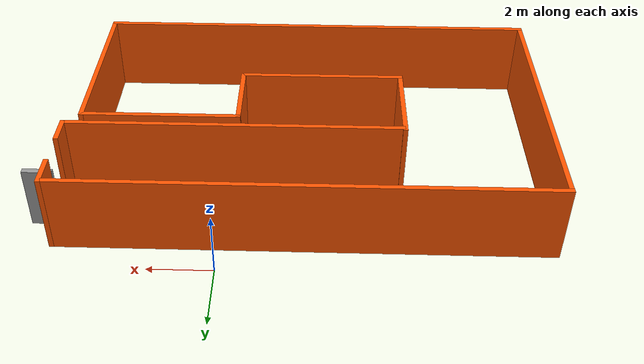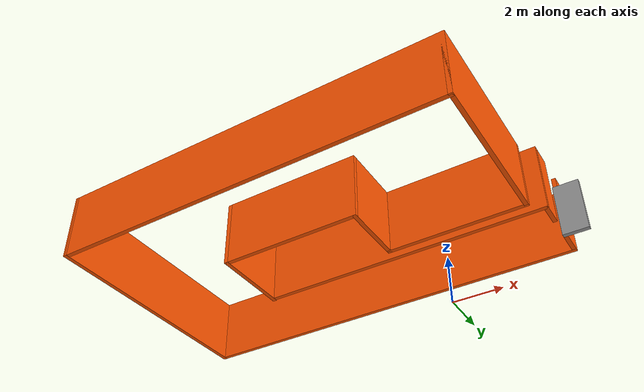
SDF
<?xml version='1.0'?>
<sdf version='1.6'>
  <model name='mybuilding'>
    <pose frame=''>-2.505 -5.355 0 0 -0 0</pose>
    <link name='Door_0'>
      <collision name='Door_0_Collision'>
        <geometry>
          <box>
            <size>0.9 0.17 2</size>
          </box>
        </geometry>
        <pose frame=''>0 0 1 0 -0 0</pose>
      </collision>
      <visual name='Door_0_Visual'>
        <pose frame=''>0 0 1 0 -0 0</pose>
        <geometry>
          <box>
            <size>0.9 0.17 2</size>
          </box>
        </geometry>
        <material>
          <script>
            <uri>file://media/materials/scripts/gazebo.material</uri>
            <name>Gazebo/Grey</name>
          </script>
        </material>
      </visual>
      <pose frame=''>7.805 3.415 0 0 -0 0</pose>
    </link>
    <link name='Wall_1'>
      <collision name='Wall_1_Collision'>
        <geometry>
          <box>
            <size>1 0.15 2.5</size>
          </box>
        </geometry>
        <pose frame=''>0 0 1.25 0 -0 0</pose>
      </collision>
      <visual name='Wall_1_Visual'>
        <pose frame=''>0 0 1.25 0 -0 0</pose>
        <geometry>
          <box>
            <size>1 0.15 2.5</size>
          </box>
        </geometry>
        <material>
          <script>
            <uri>file://media/materials/scripts/gazebo.material</uri>
            <name>Gazebo/Grey</name>
          </script>
          <ambient>1 0.333333 0 1</ambient>
        </material>
        <meta>
          <layer>0</layer>
        </meta>
      </visual>
      <pose frame=''>7.425 4 0 0 0 -1.5708</pose>
    </link>
    <link name='Wall_23'>
      <collision name='Wall_23_Collision'>
        <geometry>
          <box>
            <size>15 0.15 2.5</size>
          </box>
        </geometry>
        <pose frame=''>0 0 1.25 0 -0 0</pose>
      </collision>
      <visual name='Wall_23_Visual'>
        <pose frame=''>0 0 1.25 0 -0 0</pose>
        <geometry>
          <box>
            <size>15 0.15 2.5</size>
          </box>
        </geometry>
        <material>
          <script>
            <uri>file://media/materials/scripts/gazebo.material</uri>
            <name>Gazebo/Grey</name>
          </script>
          <ambient>1 0.333333 0 1</ambient>
        </material>
        <meta>
          <layer>0</layer>
        </meta>
      </visual>
      <pose frame=''>0 4.425 0 0 -0 3.14159</pose>
    </link>
    <link name='Wall_25'>
      <collision name='Wall_25_Collision'>
        <geometry>
          <box>
            <size>9 0.15 2.5</size>
          </box>
        </geometry>
        <pose frame=''>0 0 1.25 0 -0 0</pose>
      </collision>
      <visual name='Wall_25_Visual'>
        <pose frame=''>0 0 1.25 0 -0 0</pose>
        <geometry>
          <box>
            <size>9 0.15 2.5</size>
          </box>
        </geometry>
        <material>
          <script>
            <uri>file://media/materials/scripts/gazebo.material</uri>
            <name>Gazebo/Grey</name>
          </script>
          <ambient>1 0.333333 0 1</ambient>
        </material>
        <meta>
          <layer>0</layer>
        </meta>
      </visual>
      <pose frame=''>-7.425 0 0 0 0 -1.5708</pose>
    </link>
    <link name='Wall_26'>
      <collision name='Wall_26_Collision'>
        <geometry>
          <box>
            <size>14.5 0.15 2.5</size>
          </box>
        </geometry>
        <pose frame=''>0 0 1.25 0 -0 0</pose>
      </collision>
      <visual name='Wall_26_Visual'>
        <pose frame=''>0 0 1.25 0 -0 0</pose>
        <geometry>
          <box>
            <size>14.5 0.15 2.5</size>
          </box>
        </geometry>
        <material>
          <script>
            <uri>file://media/materials/scripts/gazebo.material</uri>
            <name>Gazebo/Grey</name>
          </script>
          <ambient>1 0.333333 0 1</ambient>
        </material>
        <meta>
          <layer>0</layer>
        </meta>
      </visual>
      <pose frame=''>-0.25 -4.425 0 0 -0 0</pose>
    </link>
    <link name='Wall_27'>
      <collision name='Wall_27_Collision'>
        <geometry>
          <box>
            <size>5.75 0.15 2.5</size>
          </box>
        </geometry>
        <pose frame=''>0 0 1.25 0 -0 0</pose>
      </collision>
      <visual name='Wall_27_Visual'>
        <pose frame=''>0 0 1.25 0 -0 0</pose>
        <geometry>
          <box>
            <size>5.75 0.15 2.5</size>
          </box>
        </geometry>
        <material>
          <script>
            <uri>file://media/materials/scripts/gazebo.material</uri>
            <name>Gazebo/Grey</name>
          </script>
          <ambient>1 0.333333 0 1</ambient>
        </material>
        <meta>
          <layer>0</layer>
        </meta>
      </visual>
      <pose frame=''>6.925 -1.625 0 0 -0 1.5708</pose>
    </link>
    <link name='Wall_28'>
      <collision name='Wall_28_Collision'>
        <geometry>
          <box>
            <size>5 0.15 2.5</size>
          </box>
        </geometry>
        <pose frame=''>0 0 1.25 0 -0 0</pose>
      </collision>
      <visual name='Wall_28_Visual'>
        <pose frame=''>0 0 1.25 0 -0 0</pose>
        <geometry>
          <box>
            <size>5 0.15 2.5</size>
          </box>
        </geometry>
        <material>
          <script>
            <uri>file://media/materials/scripts/gazebo.material</uri>
            <name>Gazebo/Grey</name>
          </script>
          <ambient>1 0.333333 0 1</ambient>
        </material>
        <meta>
          <layer>0</layer>
        </meta>
      </visual>
      <pose frame=''>4.5 1.175 0 0 -0 3.14159</pose>
    </link>
    <link name='Wall_29'>
      <collision name='Wall_29_Collision'>
        <geometry>
          <box>
            <size>2.5 0.15 2.5</size>
          </box>
        </geometry>
        <pose frame=''>0 0 1.25 0 -0 0</pose>
      </collision>
      <visual name='Wall_29_Visual'>
        <pose frame=''>0 0 1.25 0 -0 0</pose>
        <geometry>
          <box>
            <size>2.5 0.15 2.5</size>
          </box>
        </geometry>
        <material>
          <script>
            <uri>file://media/materials/scripts/gazebo.material</uri>
            <name>Gazebo/Grey</name>
          </script>
          <ambient>1 0.333333 0 1</ambient>
        </material>
        <meta>
          <layer>0</layer>
        </meta>
      </visual>
      <pose frame=''>2.075 0 0 0 0 -1.5708</pose>
    </link>
    <link name='Wall_30'>
      <collision name='Wall_30_Collision'>
        <geometry>
          <box>
            <size>5.25 0.15 2.5</size>
          </box>
        </geometry>
        <pose frame=''>0 0 1.25 0 -0 0</pose>
      </collision>
      <visual name='Wall_30_Visual'>
        <pose frame=''>0 0 1.25 0 -0 0</pose>
        <geometry>
          <box>
            <size>5.25 0.15 2.5</size>
          </box>
        </geometry>
        <material>
          <script>
            <uri>file://media/materials/scripts/gazebo.material</uri>
            <name>Gazebo/Grey</name>
          </script>
          <ambient>1 0.333333 0 1</ambient>
        </material>
        <meta>
          <layer>0</layer>
        </meta>
      </visual>
      <pose frame=''>-0.475 -1.175 0 0 -0 3.14159</pose>
    </link>
    <link name='Wall_41'>
      <collision name='Wall_41_Collision'>
        <geometry>
          <box>
            <size>0.940974 0.15 2.5</size>
          </box>
        </geometry>
        <pose frame=''>0 0 1.25 0 -0 0</pose>
      </collision>
      <visual name='Wall_41_Visual'>
        <pose frame=''>0 0 1.25 0 -0 0</pose>
        <geometry>
          <box>
            <size>0.940974 0.15 2.5</size>
          </box>
        </geometry>
        <material>
          <script>
            <uri>file://media/materials/scripts/gazebo.material</uri>
            <name>Gazebo/Grey</name>
          </script>
          <ambient>1 0.333333 0 1</ambient>
        </material>
        <meta>
          <layer>0</layer>
        </meta>
      </visual>
      <pose frame=''>7.39756 2.04345 0 0 0 -1.5708</pose>
    </link>
    <link name='Wall_42'>
      <collision name='Wall_42_Collision'>
        <geometry>
          <box>
            <size>10.5 0.15 2.5</size>
          </box>
        </geometry>
        <pose frame=''>0 0 1.25 0 -0 0</pose>
      </collision>
      <visual name='Wall_42_Visual'>
        <pose frame=''>0 0 1.25 0 -0 0</pose>
        <geometry>
          <box>
            <size>10.5 0.15 2.5</size>
          </box>
        </geometry>
        <material>
          <script>
            <uri>file://media/materials/scripts/gazebo.material</uri>
            <name>Gazebo/Grey</name>
          </script>
          <ambient>1 0.333333 0 1</ambient>
        </material>
        <meta>
          <layer>0</layer>
        </meta>
      </visual>
      <pose frame=''>2.22256 1.63499 0 0 -0 3.14159</pose>
    </link>
    <link name='Wall_44'>
      <collision name='Wall_44_Collision'>
        <geometry>
          <box>
            <size>3 0.15 2.5</size>
          </box>
        </geometry>
        <pose frame=''>0 0 1.25 0 -0 0</pose>
      </collision>
      <visual name='Wall_44_Visual'>
        <pose frame=''>0 0 1.25 0 -0 0</pose>
        <geometry>
          <box>
            <size>3 0.15 2.5</size>
          </box>
        </geometry>
        <material>
          <script>
            <uri>file://media/materials/scripts/gazebo.material</uri>
            <name>Gazebo/Grey</name>
          </script>
          <ambient>1 0.333333 0 1</ambient>
        </material>
        <meta>
          <layer>0</layer>
        </meta>
      </visual>
      <pose frame=''>-3.025 0.25 0 0 -0 1.5708</pose>
    </link>
    <static>1</static>
  </model>
</sdf>
